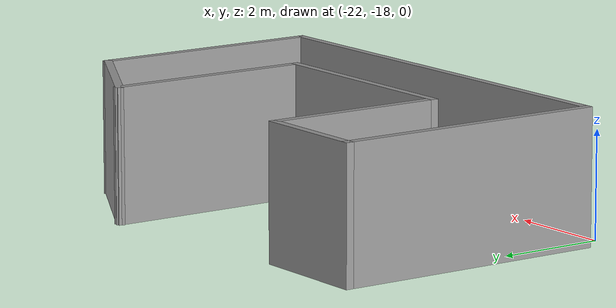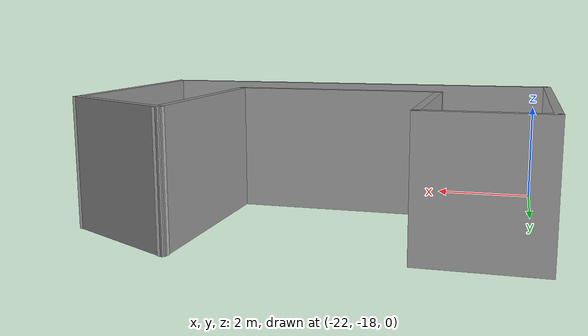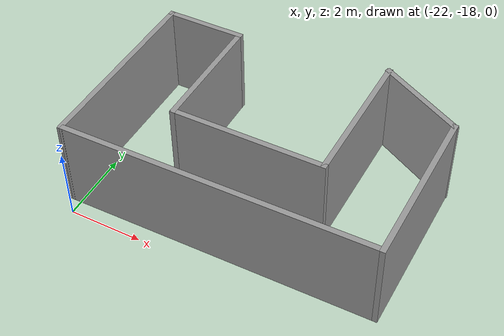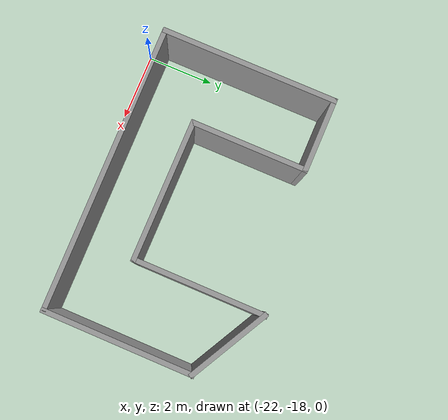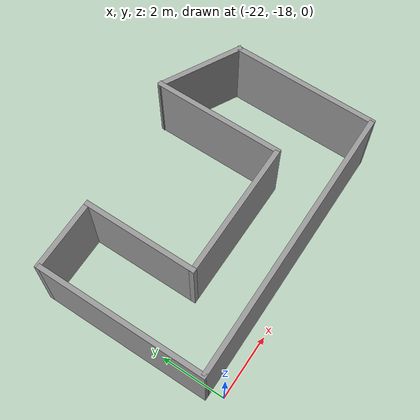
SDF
<?xml version='1.0'?>
<sdf version='1.6'>
  <model name='Building3'>
    <pose frame=''>-18.0333 -14.7294 0 0 -0 0</pose>
    <link name='Wall_1'>
      <collision name='Wall_1_Collision'>
        <geometry>
          <box>
            <size>8.43905 0.15 2.5</size>
          </box>
        </geometry>
        <pose frame=''>0 0 1.25 0 -0 0</pose>
      </collision>
      <visual name='Wall_1_Visual'>
        <pose frame=''>0 0 1.25 0 -0 0</pose>
        <geometry>
          <box>
            <size>8.43905 0.15 2.5</size>
          </box>
        </geometry>
        <material>
          <script>
            <uri>file://media/materials/scripts/gazebo.material</uri>
            <name>Gazebo/Grey</name>
          </script>
          <ambient>1 1 1 1</ambient>
        </material>
        <meta>
          <layer>0</layer>
        </meta>
      </visual>
      <pose frame=''>-0.010318 -2.7824 0 0 -0 0.007381</pose>
    </link>
    <link name='Wall_2'>
      <collision name='Wall_2_Collision'>
        <geometry>
          <box>
            <size>4.5 0.15 2.5</size>
          </box>
        </geometry>
        <pose frame=''>0 0 1.25 0 -0 0</pose>
      </collision>
      <visual name='Wall_2_Visual'>
        <pose frame=''>0 0 1.25 0 -0 0</pose>
        <geometry>
          <box>
            <size>4.5 0.15 2.5</size>
          </box>
        </geometry>
        <material>
          <script>
            <uri>file://media/materials/scripts/gazebo.material</uri>
            <name>Gazebo/Grey</name>
          </script>
          <ambient>1 1 1 1</ambient>
        </material>
        <meta>
          <layer>0</layer>
        </meta>
      </visual>
      <pose frame=''>4.19527 -0.576814 0 0 -0 1.5708</pose>
    </link>
    <link name='Wall_3'>
      <collision name='Wall_3_Collision'>
        <geometry>
          <box>
            <size>2.6657 0.15 2.5</size>
          </box>
        </geometry>
        <pose frame=''>0 0 1.25 0 -0 0</pose>
      </collision>
      <visual name='Wall_3_Visual'>
        <pose frame=''>0 0 1.25 0 -0 0</pose>
        <geometry>
          <box>
            <size>2.6657 0.15 2.5</size>
          </box>
        </geometry>
        <material>
          <script>
            <uri>file://media/materials/scripts/gazebo.material</uri>
            <name>Gazebo/Grey</name>
          </script>
          <ambient>1 1 1 1</ambient>
        </material>
        <meta>
          <layer>0</layer>
        </meta>
      </visual>
      <pose frame=''>3.08673 2.1926 0 0 -0 2.6494</pose>
    </link>
    <link name='Wall_4'>
      <collision name='Wall_4_Collision'>
        <geometry>
          <box>
            <size>4 0.15 2.5</size>
          </box>
        </geometry>
        <pose frame=''>0 0 1.25 0 -0 0</pose>
      </collision>
      <visual name='Wall_4_Visual'>
        <pose frame=''>0 0 1.25 0 -0 0</pose>
        <geometry>
          <box>
            <size>4 0.15 2.5</size>
          </box>
        </geometry>
        <material>
          <script>
            <uri>file://media/materials/scripts/gazebo.material</uri>
            <name>Gazebo/Grey</name>
          </script>
          <ambient>1 1 1 1</ambient>
        </material>
        <meta>
          <layer>0</layer>
        </meta>
      </visual>
      <pose frame=''>1.97819 0.862006 0 0 0 -1.5708</pose>
    </link>
    <link name='Wall_5'>
      <collision name='Wall_5_Collision'>
        <geometry>
          <box>
            <size>4.25 0.15 2.5</size>
          </box>
        </geometry>
        <pose frame=''>0 0 1.25 0 -0 0</pose>
      </collision>
      <visual name='Wall_5_Visual'>
        <pose frame=''>0 0 1.25 0 -0 0</pose>
        <geometry>
          <box>
            <size>4.25 0.15 2.5</size>
          </box>
        </geometry>
        <material>
          <script>
            <uri>file://media/materials/scripts/gazebo.material</uri>
            <name>Gazebo/Grey</name>
          </script>
          <ambient>1 1 1 1</ambient>
        </material>
        <meta>
          <layer>0</layer>
        </meta>
      </visual>
      <pose frame=''>-0.071811 -1.06299 0 0 -0 3.14159</pose>
    </link>
    <link name='Wall_6'>
      <collision name='Wall_6_Collision'>
        <geometry>
          <box>
            <size>3.5 0.15 2.5</size>
          </box>
        </geometry>
        <pose frame=''>0 0 1.25 0 -0 0</pose>
      </collision>
      <visual name='Wall_6_Visual'>
        <pose frame=''>0 0 1.25 0 -0 0</pose>
        <geometry>
          <box>
            <size>3.5 0.15 2.5</size>
          </box>
        </geometry>
        <material>
          <script>
            <uri>file://media/materials/scripts/gazebo.material</uri>
            <name>Gazebo/Grey</name>
          </script>
          <ambient>1 1 1 1</ambient>
        </material>
        <meta>
          <layer>0</layer>
        </meta>
      </visual>
      <pose frame=''>-2.12181 0.612006 0 0 -0 1.5708</pose>
    </link>
    <link name='Wall_7'>
      <collision name='Wall_7_Collision'>
        <geometry>
          <box>
            <size>2.25 0.15 2.5</size>
          </box>
        </geometry>
        <pose frame=''>0 0 1.25 0 -0 0</pose>
      </collision>
      <visual name='Wall_7_Visual'>
        <pose frame=''>0 0 1.25 0 -0 0</pose>
        <geometry>
          <box>
            <size>2.25 0.15 2.5</size>
          </box>
        </geometry>
        <material>
          <script>
            <uri>file://media/materials/scripts/gazebo.material</uri>
            <name>Gazebo/Grey</name>
          </script>
          <ambient>1 1 1 1</ambient>
        </material>
        <meta>
          <layer>0</layer>
        </meta>
      </visual>
      <pose frame=''>-3.17181 2.28701 0 0 -0 3.14159</pose>
    </link>
    <link name='Wall_8'>
      <collision name='Wall_8_Collision'>
        <geometry>
          <box>
            <size>5.25 0.15 2.5</size>
          </box>
        </geometry>
        <pose frame=''>0 0 1.25 0 -0 0</pose>
      </collision>
      <visual name='Wall_8_Visual'>
        <pose frame=''>0 0 1.25 0 -0 0</pose>
        <geometry>
          <box>
            <size>5.25 0.15 2.5</size>
          </box>
        </geometry>
        <material>
          <script>
            <uri>file://media/materials/scripts/gazebo.material</uri>
            <name>Gazebo/Grey</name>
          </script>
          <ambient>1 1 1 1</ambient>
        </material>
        <meta>
          <layer>0</layer>
        </meta>
      </visual>
      <pose frame=''>-4.22181 -0.262994 0 0 0 -1.5708</pose>
    </link>
    <static>1</static>
  </model>
</sdf>
